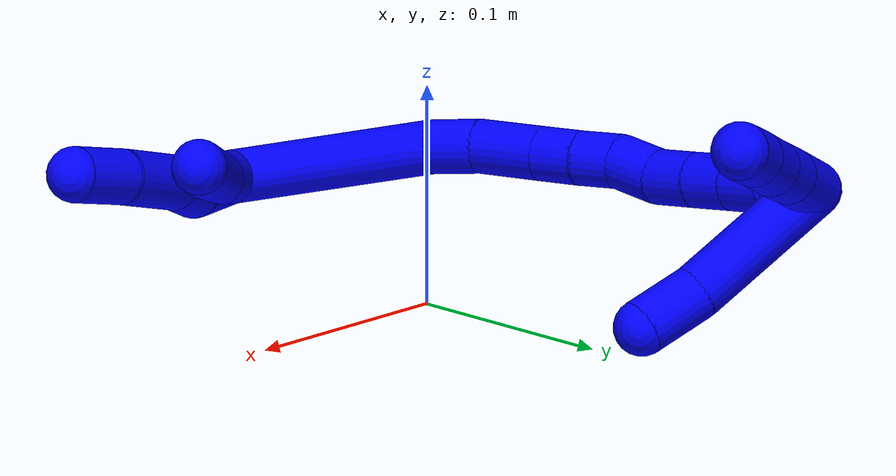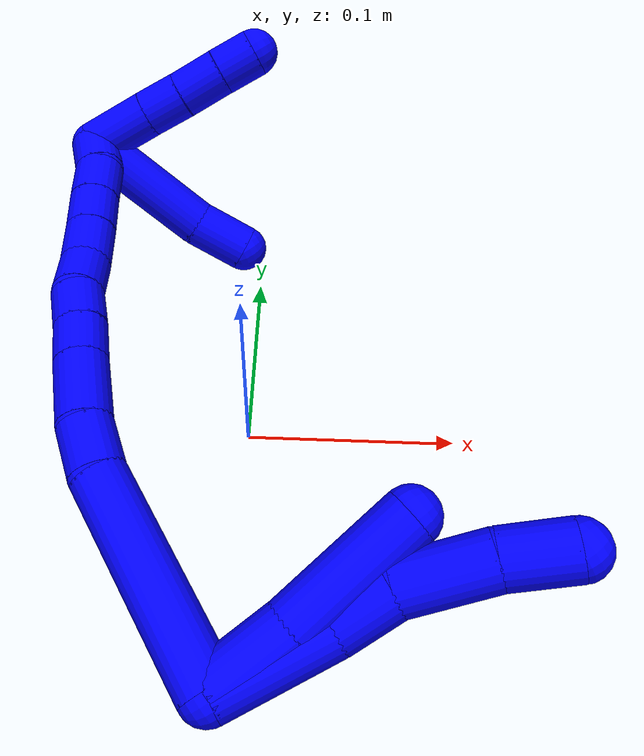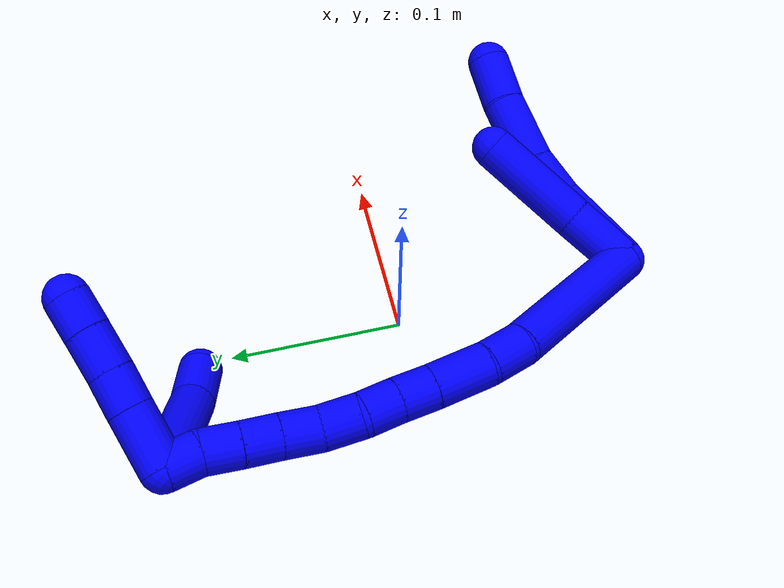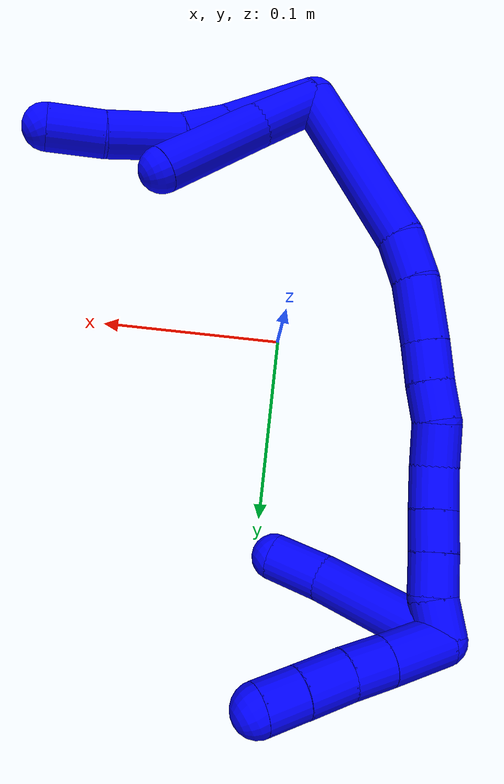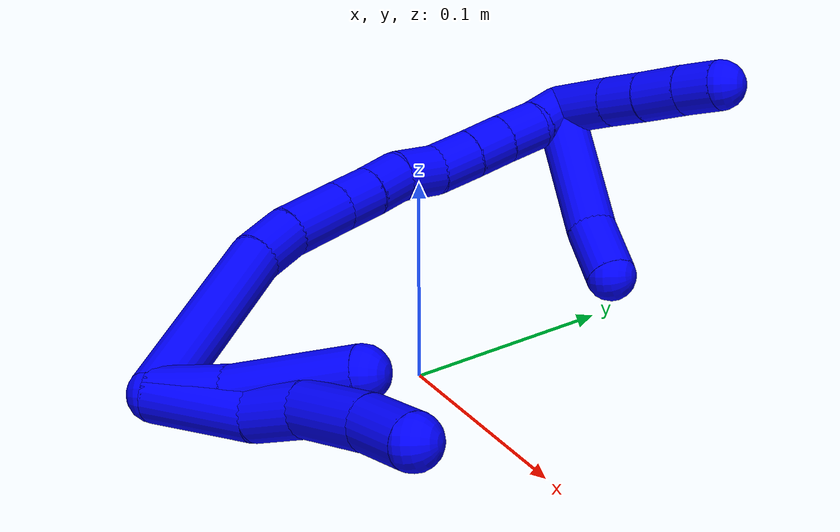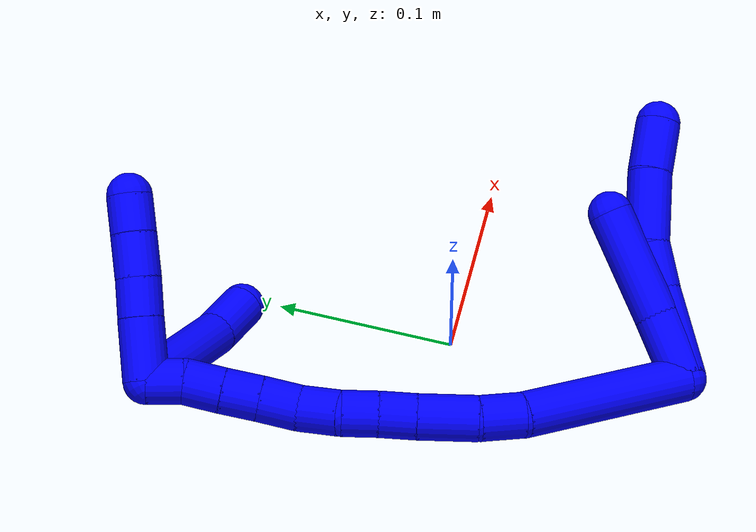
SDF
<sdf version="1.7">
 <world name="default">
  <model name="1">
   <static>0</static>
   <link name="1">
    <collision name="collision-cylinder-e_1_2_8">
     <pose>-0.002496 -0.003283 -0.0257 3.01455 -0.096046 -1.29409</pose>
     <geometry><cylinder><radius>0.0125</radius><length>0.052058</length></cylinder></geometry>
     <surface>
      <friction><ode><mu>1.16</mu><mu2>1.16</mu2><slip1>0</slip1><slip2>0</slip2></ode></friction>
      <contact><ode><kp>1e+06</kp><kd>1</kd><max_vel>0</max_vel><min_depth>0.001</min_depth></ode></contact>
     </surface>
    </collision>
    <visual name="visual-cylinder-e_1_2_8">
     <pose>-0.002496 -0.003283 -0.0257 3.01455 -0.096046 -1.29409</pose>
     <geometry><cylinder><radius>0.0125</radius><length>0.052058</length></cylinder></geometry>
     <material><ambient>0 0 1 1</ambient></material>
    </visual>
    <collision name="collision-cylinder-e_2_8_9">
     <pose>-0.002702 -0.008476 -0.064848 3.00044 0.167065 1.73922</pose>
     <geometry><cylinder><radius>0.0125</radius><length>0.027549</length></cylinder></geometry>
     <surface>
      <friction><ode><mu>1.16</mu><mu2>1.16</mu2><slip1>0</slip1><slip2>0</slip2></ode></friction>
      <contact><ode><kp>1e+06</kp><kd>1</kd><max_vel>0</max_vel><min_depth>0.001</min_depth></ode></contact>
     </surface>
    </collision>
    <visual name="visual-cylinder-e_2_8_9">
     <pose>-0.002702 -0.008476 -0.064848 3.00044 0.167065 1.73922</pose>
     <geometry><cylinder><radius>0.0125</radius><length>0.027549</length></cylinder></geometry>
     <material><ambient>0 0 1 1</ambient></material>
    </visual>
    <collision name="collision-cylinder-e_3_9_10">
     <pose>0.000653 -0.018577 -0.096829 2.7255 0.052465 0.24732</pose>
     <geometry><cylinder><radius>0.0125</radius><length>0.040582</length></cylinder></geometry>
     <surface>
      <friction><ode><mu>1.16</mu><mu2>1.16</mu2><slip1>0</slip1><slip2>0</slip2></ode></friction>
      <contact><ode><kp>1e+06</kp><kd>1</kd><max_vel>0</max_vel><min_depth>0.001</min_depth></ode></contact>
     </surface>
    </collision>
    <visual name="visual-cylinder-e_3_9_10">
     <pose>0.000653 -0.018577 -0.096829 2.7255 0.052465 0.24732</pose>
     <geometry><cylinder><radius>0.0125</radius><length>0.040582</length></cylinder></geometry>
     <material><ambient>0 0 1 1</ambient></material>
    </visual>
    <collision name="collision-cylinder-e_4_10_6">
     <pose>0.001737 -0.034445 -0.12814 2.6005 0.00135 0.004867</pose>
     <geometry><cylinder><radius>0.0125</radius><length>0.029812</length></cylinder></geometry>
     <surface>
      <friction><ode><mu>1.16</mu><mu2>1.16</mu2><slip1>0</slip1><slip2>0</slip2></ode></friction>
      <contact><ode><kp>1e+06</kp><kd>1</kd><max_vel>0</max_vel><min_depth>0.001</min_depth></ode></contact>
     </surface>
    </collision>
    <visual name="visual-cylinder-e_4_10_6">
     <pose>0.001737 -0.034445 -0.12814 2.6005 0.00135 0.004867</pose>
     <geometry><cylinder><radius>0.0125</radius><length>0.029812</length></cylinder></geometry>
     <material><ambient>0 0 1 1</ambient></material>
    </visual>
    <collision name="collision-cylinder-e_1_2_11">
     <pose>0.000445 0.000313 -0.018773 -3.1249 0.023691 -1.91379</pose>
     <geometry><cylinder><radius>0.0125</radius><length>0.037562</length></cylinder></geometry>
     <surface>
      <friction><ode><mu>1.16</mu><mu2>1.16</mu2><slip1>0</slip1><slip2>0</slip2></ode></friction>
      <contact><ode><kp>1e+06</kp><kd>1</kd><max_vel>0</max_vel><min_depth>0.001</min_depth></ode></contact>
     </surface>
    </collision>
    <visual name="visual-cylinder-e_1_2_11">
     <pose>0.000445 0.000313 -0.018773 -3.1249 0.023691 -1.91379</pose>
     <geometry><cylinder><radius>0.0125</radius><length>0.037562</length></cylinder></geometry>
     <material><ambient>0 0 1 1</ambient></material>
    </visual>
    <collision name="collision-cylinder-e_2_11_5">
     <pose>0.005136 0.002327 -0.068428 -3.08659 0.136452 -2.37612</pose>
     <geometry><cylinder><radius>0.0125</radius><length>0.062438</length></cylinder></geometry>
     <surface>
      <friction><ode><mu>1.16</mu><mu2>1.16</mu2><slip1>0</slip1><slip2>0</slip2></ode></friction>
      <contact><ode><kp>1e+06</kp><kd>1</kd><max_vel>0</max_vel><min_depth>0.001</min_depth></ode></contact>
     </surface>
    </collision>
    <visual name="visual-cylinder-e_2_11_5">
     <pose>0.005136 0.002327 -0.068428 -3.08659 0.136452 -2.37612</pose>
     <geometry><cylinder><radius>0.0125</radius><length>0.062438</length></cylinder></geometry>
     <material><ambient>0 0 1 1</ambient></material>
    </visual>
    <collision name="collision-cylinder-e_1_2_12">
     <pose>0.01322 0.046098 -0.003635 -1.64949 0.278459 -0.300953</pose>
     <geometry><cylinder><radius>0.0125</radius><length>0.096188</length></cylinder></geometry>
     <surface>
      <friction><ode><mu>1.16</mu><mu2>1.16</mu2><slip1>0</slip1><slip2>0</slip2></ode></friction>
      <contact><ode><kp>1e+06</kp><kd>1</kd><max_vel>0</max_vel><min_depth>0.001</min_depth></ode></contact>
     </surface>
    </collision>
    <visual name="visual-cylinder-e_1_2_12">
     <pose>0.01322 0.046098 -0.003635 -1.64949 0.278459 -0.300953</pose>
     <geometry><cylinder><radius>0.0125</radius><length>0.096188</length></cylinder></geometry>
     <material><ambient>0 0 1 1</ambient></material>
    </visual>
    <collision name="collision-cylinder-e_2_12_13">
     <pose>0.028265 0.103783 -0.010244 -1.82198 0.151411 -0.194925</pose>
     <geometry><cylinder><radius>0.0125</radius><length>0.024202</length></cylinder></geometry>
     <surface>
      <friction><ode><mu>1.16</mu><mu2>1.16</mu2><slip1>0</slip1><slip2>0</slip2></ode></friction>
      <contact><ode><kp>1e+06</kp><kd>1</kd><max_vel>0</max_vel><min_depth>0.001</min_depth></ode></contact>
     </surface>
    </collision>
    <visual name="visual-cylinder-e_2_12_13">
     <pose>0.028265 0.103783 -0.010244 -1.82198 0.151411 -0.194925</pose>
     <geometry><cylinder><radius>0.0125</radius><length>0.024202</length></cylinder></geometry>
     <material><ambient>0 0 1 1</ambient></material>
    </visual>
    <collision name="collision-cylinder-e_3_13_14">
     <pose>0.030612 0.13062 -0.019393 -1.95558 0.031751 -0.047109</pose>
     <geometry><cylinder><radius>0.0125</radius><length>0.032923</length></cylinder></geometry>
     <surface>
      <friction><ode><mu>1.16</mu><mu2>1.16</mu2><slip1>0</slip1><slip2>0</slip2></ode></friction>
      <contact><ode><kp>1e+06</kp><kd>1</kd><max_vel>0</max_vel><min_depth>0.001</min_depth></ode></contact>
     </surface>
    </collision>
    <visual name="visual-cylinder-e_3_13_14">
     <pose>0.030612 0.13062 -0.019393 -1.95558 0.031751 -0.047109</pose>
     <geometry><cylinder><radius>0.0125</radius><length>0.032923</length></cylinder></geometry>
     <material><ambient>0 0 1 1</ambient></material>
    </visual>
    <collision name="collision-cylinder-e_4_14_15">
     <pose>0.031522 0.155193 -0.02977 -1.99418 0.037774 -0.058445</pose>
     <geometry><cylinder><radius>0.0125</radius><length>0.020466</length></cylinder></geometry>
     <surface>
      <friction><ode><mu>1.16</mu><mu2>1.16</mu2><slip1>0</slip1><slip2>0</slip2></ode></friction>
      <contact><ode><kp>1e+06</kp><kd>1</kd><max_vel>0</max_vel><min_depth>0.001</min_depth></ode></contact>
     </surface>
    </collision>
    <visual name="visual-cylinder-e_4_14_15">
     <pose>0.031522 0.155193 -0.02977 -1.99418 0.037774 -0.058445</pose>
     <geometry><cylinder><radius>0.0125</radius><length>0.020466</length></cylinder></geometry>
     <material><ambient>0 0 1 1</ambient></material>
    </visual>
    <collision name="collision-cylinder-e_5_15_16">
     <pose>0.032545 0.173824 -0.037627 -1.94505 0.063569 -0.093229</pose>
     <geometry><cylinder><radius>0.0125</radius><length>0.020042</length></cylinder></geometry>
     <surface>
      <friction><ode><mu>1.16</mu><mu2>1.16</mu2><slip1>0</slip1><slip2>0</slip2></ode></friction>
      <contact><ode><kp>1e+06</kp><kd>1</kd><max_vel>0</max_vel><min_depth>0.001</min_depth></ode></contact>
     </surface>
    </collision>
    <visual name="visual-cylinder-e_5_15_16">
     <pose>0.032545 0.173824 -0.037627 -1.94505 0.063569 -0.093229</pose>
     <geometry><cylinder><radius>0.0125</radius><length>0.020042</length></cylinder></geometry>
     <material><ambient>0 0 1 1</ambient></material>
    </visual>
    <collision name="collision-cylinder-e_6_16_17">
     <pose>0.031242 0.192711 -0.046786 -2.09225 -0.173802 0.298805</pose>
     <geometry><cylinder><radius>0.0125</radius><length>0.022431</length></cylinder></geometry>
     <surface>
      <friction><ode><mu>1.16</mu><mu2>1.16</mu2><slip1>0</slip1><slip2>0</slip2></ode></friction>
      <contact><ode><kp>1e+06</kp><kd>1</kd><max_vel>0</max_vel><min_depth>0.001</min_depth></ode></contact>
     </surface>
    </collision>
    <visual name="visual-cylinder-e_6_16_17">
     <pose>0.031242 0.192711 -0.046786 -2.09225 -0.173802 0.298805</pose>
     <geometry><cylinder><radius>0.0125</radius><length>0.022431</length></cylinder></geometry>
     <material><ambient>0 0 1 1</ambient></material>
    </visual>
    <collision name="collision-cylinder-e_7_17_18">
     <pose>0.030065 0.211417 -0.058378 -2.15913 0.069446 -0.129684</pose>
     <geometry><cylinder><radius>0.0125</radius><length>0.021997</length></cylinder></geometry>
     <surface>
      <friction><ode><mu>1.16</mu><mu2>1.16</mu2><slip1>0</slip1><slip2>0</slip2></ode></friction>
      <contact><ode><kp>1e+06</kp><kd>1</kd><max_vel>0</max_vel><min_depth>0.001</min_depth></ode></contact>
     </surface>
    </collision>
    <visual name="visual-cylinder-e_7_17_18">
     <pose>0.030065 0.211417 -0.058378 -2.15913 0.069446 -0.129684</pose>
     <geometry><cylinder><radius>0.0125</radius><length>0.021997</length></cylinder></geometry>
     <material><ambient>0 0 1 1</ambient></material>
    </visual>
    <collision name="collision-cylinder-e_8_18_19">
     <pose>0.031607 0.229198 -0.069911 -2.13227 0.076008 -0.137453</pose>
     <geometry><cylinder><radius>0.0125</radius><length>0.020506</length></cylinder></geometry>
     <surface>
      <friction><ode><mu>1.16</mu><mu2>1.16</mu2><slip1>0</slip1><slip2>0</slip2></ode></friction>
      <contact><ode><kp>1e+06</kp><kd>1</kd><max_vel>0</max_vel><min_depth>0.001</min_depth></ode></contact>
     </surface>
    </collision>
    <visual name="visual-cylinder-e_8_18_19">
     <pose>0.031607 0.229198 -0.069911 -2.13227 0.076008 -0.137453</pose>
     <geometry><cylinder><radius>0.0125</radius><length>0.020506</length></cylinder></geometry>
     <material><ambient>0 0 1 1</ambient></material>
    </visual>
    <collision name="collision-cylinder-e_9_19_20">
     <pose>0.033085 0.246583 -0.081235 -2.16354 0.066352 -0.124574</pose>
     <geometry><cylinder><radius>0.0125</radius><length>0.0211</length></cylinder></geometry>
     <surface>
      <friction><ode><mu>1.16</mu><mu2>1.16</mu2><slip1>0</slip1><slip2>0</slip2></ode></friction>
      <contact><ode><kp>1e+06</kp><kd>1</kd><max_vel>0</max_vel><min_depth>0.001</min_depth></ode></contact>
     </surface>
    </collision>
    <visual name="visual-cylinder-e_9_19_20">
     <pose>0.033085 0.246583 -0.081235 -2.16354 0.066352 -0.124574</pose>
     <geometry><cylinder><radius>0.0125</radius><length>0.0211</length></cylinder></geometry>
     <material><ambient>0 0 1 1</ambient></material>
    </visual>
    <collision name="collision-cylinder-e_10_20_1">
     <pose>0.034538 0.264775 -0.090491 -1.91346 0.074824 -0.106085</pose>
     <geometry><cylinder><radius>0.0125</radius><length>0.020145</length></cylinder></geometry>
     <surface>
      <friction><ode><mu>1.16</mu><mu2>1.16</mu2><slip1>0</slip1><slip2>0</slip2></ode></friction>
      <contact><ode><kp>1e+06</kp><kd>1</kd><max_vel>0</max_vel><min_depth>0.001</min_depth></ode></contact>
     </surface>
    </collision>
    <visual name="visual-cylinder-e_10_20_1">
     <pose>0.034538 0.264775 -0.090491 -1.91346 0.074824 -0.106085</pose>
     <geometry><cylinder><radius>0.0125</radius><length>0.020145</length></cylinder></geometry>
     <material><ambient>0 0 1 1</ambient></material>
    </visual>
    <collision name="collision-cylinder-e_1_1_21">
     <pose>0.010533 0.25277 -0.106382 2.09872 -0.783579 -1.24697</pose>
     <geometry><cylinder><radius>0.0125</radius><length>0.070153</length></cylinder></geometry>
     <surface>
      <friction><ode><mu>1.16</mu><mu2>1.16</mu2><slip1>0</slip1><slip2>0</slip2></ode></friction>
      <contact><ode><kp>1e+06</kp><kd>1</kd><max_vel>0</max_vel><min_depth>0.001</min_depth></ode></contact>
     </surface>
    </collision>
    <visual name="visual-cylinder-e_1_1_21">
     <pose>0.010533 0.25277 -0.106382 2.09872 -0.783579 -1.24697</pose>
     <geometry><cylinder><radius>0.0125</radius><length>0.070153</length></cylinder></geometry>
     <material><ambient>0 0 1 1</ambient></material>
    </visual>
    <collision name="collision-cylinder-e_2_21_4">
     <pose>-0.02275 0.221395 -0.126098 2.19899 -0.608058 -1.10375</pose>
     <geometry><cylinder><radius>0.0125</radius><length>0.029847</length></cylinder></geometry>
     <surface>
      <friction><ode><mu>1.16</mu><mu2>1.16</mu2><slip1>0</slip1><slip2>0</slip2></ode></friction>
      <contact><ode><kp>1e+06</kp><kd>1</kd><max_vel>0</max_vel><min_depth>0.001</min_depth></ode></contact>
     </surface>
    </collision>
    <visual name="visual-cylinder-e_2_21_4">
     <pose>-0.02275 0.221395 -0.126098 2.19899 -0.608058 -1.10375</pose>
     <geometry><cylinder><radius>0.0125</radius><length>0.029847</length></cylinder></geometry>
     <material><ambient>0 0 1 1</ambient></material>
    </visual>
    <collision name="collision-cylinder-e_1_1_22">
     <pose>0.038395 0.269789 -0.109925 2.87152 0.18418 1.19399</pose>
     <geometry><cylinder><radius>0.0125</radius><length>0.033901</length></cylinder></geometry>
     <surface>
      <friction><ode><mu>1.16</mu><mu2>1.16</mu2><slip1>0</slip1><slip2>0</slip2></ode></friction>
      <contact><ode><kp>1e+06</kp><kd>1</kd><max_vel>0</max_vel><min_depth>0.001</min_depth></ode></contact>
     </surface>
    </collision>
    <visual name="visual-cylinder-e_1_1_22">
     <pose>0.038395 0.269789 -0.109925 2.87152 0.18418 1.19399</pose>
     <geometry><cylinder><radius>0.0125</radius><length>0.033901</length></cylinder></geometry>
     <material><ambient>0 0 1 1</ambient></material>
    </visual>
    <collision name="collision-cylinder-e_2_22_23">
     <pose>0.043288 0.262369 -0.136051 2.85431 0.168794 1.05849</pose>
     <geometry><cylinder><radius>0.0125</radius><length>0.021296</length></cylinder></geometry>
     <surface>
      <friction><ode><mu>1.16</mu><mu2>1.16</mu2><slip1>0</slip1><slip2>0</slip2></ode></friction>
      <contact><ode><kp>1e+06</kp><kd>1</kd><max_vel>0</max_vel><min_depth>0.001</min_depth></ode></contact>
     </surface>
    </collision>
    <visual name="visual-cylinder-e_2_22_23">
     <pose>0.043288 0.262369 -0.136051 2.85431 0.168794 1.05849</pose>
     <geometry><cylinder><radius>0.0125</radius><length>0.021296</length></cylinder></geometry>
     <material><ambient>0 0 1 1</ambient></material>
    </visual>
    <collision name="collision-cylinder-e_3_23_24">
     <pose>0.047227 0.256512 -0.157635 2.89632 0.179202 1.25974</pose>
     <geometry><cylinder><radius>0.0125</radius><length>0.024131</length></cylinder></geometry>
     <surface>
      <friction><ode><mu>1.16</mu><mu2>1.16</mu2><slip1>0</slip1><slip2>0</slip2></ode></friction>
      <contact><ode><kp>1e+06</kp><kd>1</kd><max_vel>0</max_vel><min_depth>0.001</min_depth></ode></contact>
     </surface>
    </collision>
    <visual name="visual-cylinder-e_3_23_24">
     <pose>0.047227 0.256512 -0.157635 2.89632 0.179202 1.25974</pose>
     <geometry><cylinder><radius>0.0125</radius><length>0.024131</length></cylinder></geometry>
     <material><ambient>0 0 1 1</ambient></material>
    </visual>
    <collision name="collision-cylinder-e_4_24_3">
     <pose>0.050918 0.25121 -0.179082 2.90261 0.149545 1.11566</pose>
     <geometry><cylinder><radius>0.0125</radius><length>0.020672</length></cylinder></geometry>
     <surface>
      <friction><ode><mu>1.16</mu><mu2>1.16</mu2><slip1>0</slip1><slip2>0</slip2></ode></friction>
      <contact><ode><kp>1e+06</kp><kd>1</kd><max_vel>0</max_vel><min_depth>0.001</min_depth></ode></contact>
     </surface>
    </collision>
    <visual name="visual-cylinder-e_4_24_3">
     <pose>0.050918 0.25121 -0.179082 2.90261 0.149545 1.11566</pose>
     <geometry><cylinder><radius>0.0125</radius><length>0.020672</length></cylinder></geometry>
     <material><ambient>0 0 1 1</ambient></material>
    </visual>
    <collision name="collision-sphere-3">
     <pose>0.052458 0.248791 -0.189012 0 -0 0</pose>
     <geometry><sphere><radius>0.0125</radius></sphere></geometry>
     <surface>
      <friction><ode><mu>1.16</mu><mu2>1.16</mu2><slip1>0</slip1><slip2>0</slip2></ode></friction>
      <contact><ode><kp>1e+06</kp><kd>1</kd><max_vel>0</max_vel><min_depth>0.001</min_depth></ode></contact>
     </surface>
    </collision>
    <visual name="visual-sphere-3">
     <pose>0.052458 0.248791 -0.189012 0 -0 0</pose>
     <geometry><sphere><radius>0.0125</radius></sphere></geometry>
     <material><ambient>0 0 1 1</ambient></material>
    </visual>
    <collision name="collision-sphere-24">
     <pose>0.049378 0.25363 -0.169152 0 -0 0</pose>
     <geometry><sphere><radius>0.0125</radius></sphere></geometry>
     <surface>
      <friction><ode><mu>1.16</mu><mu2>1.16</mu2><slip1>0</slip1><slip2>0</slip2></ode></friction>
      <contact><ode><kp>1e+06</kp><kd>1</kd><max_vel>0</max_vel><min_depth>0.001</min_depth></ode></contact>
     </surface>
    </collision>
    <visual name="visual-sphere-24">
     <pose>0.049378 0.25363 -0.169152 0 -0 0</pose>
     <geometry><sphere><radius>0.0125</radius></sphere></geometry>
     <material><ambient>0 0 1 1</ambient></material>
    </visual>
    <collision name="collision-sphere-23">
     <pose>0.045077 0.259395 -0.146118 0 -0 0</pose>
     <geometry><sphere><radius>0.0125</radius></sphere></geometry>
     <surface>
      <friction><ode><mu>1.16</mu><mu2>1.16</mu2><slip1>0</slip1><slip2>0</slip2></ode></friction>
      <contact><ode><kp>1e+06</kp><kd>1</kd><max_vel>0</max_vel><min_depth>0.001</min_depth></ode></contact>
     </surface>
    </collision>
    <visual name="visual-sphere-23">
     <pose>0.045077 0.259395 -0.146118 0 -0 0</pose>
     <geometry><sphere><radius>0.0125</radius></sphere></geometry>
     <material><ambient>0 0 1 1</ambient></material>
    </visual>
    <collision name="collision-sphere-22">
     <pose>0.041499 0.265343 -0.125985 0 -0 0</pose>
     <geometry><sphere><radius>0.0125</radius></sphere></geometry>
     <surface>
      <friction><ode><mu>1.16</mu><mu2>1.16</mu2><slip1>0</slip1><slip2>0</slip2></ode></friction>
      <contact><ode><kp>1e+06</kp><kd>1</kd><max_vel>0</max_vel><min_depth>0.001</min_depth></ode></contact>
     </surface>
    </collision>
    <visual name="visual-sphere-22">
     <pose>0.041499 0.265343 -0.125985 0 -0 0</pose>
     <geometry><sphere><radius>0.0125</radius></sphere></geometry>
     <material><ambient>0 0 1 1</ambient></material>
    </visual>
    <collision name="collision-sphere-4">
     <pose>-0.031276 0.211485 -0.133296 0 -0 0</pose>
     <geometry><sphere><radius>0.0125</radius></sphere></geometry>
     <surface>
      <friction><ode><mu>1.16</mu><mu2>1.16</mu2><slip1>0</slip1><slip2>0</slip2></ode></friction>
      <contact><ode><kp>1e+06</kp><kd>1</kd><max_vel>0</max_vel><min_depth>0.001</min_depth></ode></contact>
     </surface>
    </collision>
    <visual name="visual-sphere-4">
     <pose>-0.031276 0.211485 -0.133296 0 -0 0</pose>
     <geometry><sphere><radius>0.0125</radius></sphere></geometry>
     <material><ambient>0 0 1 1</ambient></material>
    </visual>
    <collision name="collision-sphere-21">
     <pose>-0.014225 0.231305 -0.118899 0 -0 0</pose>
     <geometry><sphere><radius>0.0125</radius></sphere></geometry>
     <surface>
      <friction><ode><mu>1.16</mu><mu2>1.16</mu2><slip1>0</slip1><slip2>0</slip2></ode></friction>
      <contact><ode><kp>1e+06</kp><kd>1</kd><max_vel>0</max_vel><min_depth>0.001</min_depth></ode></contact>
     </surface>
    </collision>
    <visual name="visual-sphere-21">
     <pose>-0.014225 0.231305 -0.118899 0 -0 0</pose>
     <geometry><sphere><radius>0.0125</radius></sphere></geometry>
     <material><ambient>0 0 1 1</ambient></material>
    </visual>
    <collision name="collision-sphere-1">
     <pose>0.035291 0.274235 -0.093865 0 -0 0</pose>
     <geometry><sphere><radius>0.0125</radius></sphere></geometry>
     <surface>
      <friction><ode><mu>1.16</mu><mu2>1.16</mu2><slip1>0</slip1><slip2>0</slip2></ode></friction>
      <contact><ode><kp>1e+06</kp><kd>1</kd><max_vel>0</max_vel><min_depth>0.001</min_depth></ode></contact>
     </surface>
    </collision>
    <visual name="visual-sphere-1">
     <pose>0.035291 0.274235 -0.093865 0 -0 0</pose>
     <geometry><sphere><radius>0.0125</radius></sphere></geometry>
     <material><ambient>0 0 1 1</ambient></material>
    </visual>
    <collision name="collision-sphere-11">
     <pose>0.00089 0.000627 -0.037546 0 -0 0</pose>
     <geometry><sphere><radius>0.0125</radius></sphere></geometry>
     <surface>
      <friction><ode><mu>1.16</mu><mu2>1.16</mu2><slip1>0</slip1><slip2>0</slip2></ode></friction>
      <contact><ode><kp>1e+06</kp><kd>1</kd><max_vel>0</max_vel><min_depth>0.001</min_depth></ode></contact>
     </surface>
    </collision>
    <visual name="visual-sphere-11">
     <pose>0.00089 0.000627 -0.037546 0 -0 0</pose>
     <geometry><sphere><radius>0.0125</radius></sphere></geometry>
     <material><ambient>0 0 1 1</ambient></material>
    </visual>
    <collision name="collision-sphere-6">
     <pose>0.001757 -0.042123 -0.140916 0 -0 0</pose>
     <geometry><sphere><radius>0.0125</radius></sphere></geometry>
     <surface>
      <friction><ode><mu>1.16</mu><mu2>1.16</mu2><slip1>0</slip1><slip2>0</slip2></ode></friction>
      <contact><ode><kp>1e+06</kp><kd>1</kd><max_vel>0</max_vel><min_depth>0.001</min_depth></ode></contact>
     </surface>
    </collision>
    <visual name="visual-sphere-6">
     <pose>0.001757 -0.042123 -0.140916 0 -0 0</pose>
     <geometry><sphere><radius>0.0125</radius></sphere></geometry>
     <material><ambient>0 0 1 1</ambient></material>
    </visual>
    <collision name="collision-sphere-10">
     <pose>0.001717 -0.026767 -0.115363 0 -0 0</pose>
     <geometry><sphere><radius>0.0125</radius></sphere></geometry>
     <surface>
      <friction><ode><mu>1.16</mu><mu2>1.16</mu2><slip1>0</slip1><slip2>0</slip2></ode></friction>
      <contact><ode><kp>1e+06</kp><kd>1</kd><max_vel>0</max_vel><min_depth>0.001</min_depth></ode></contact>
     </surface>
    </collision>
    <visual name="visual-sphere-10">
     <pose>0.001717 -0.026767 -0.115363 0 -0 0</pose>
     <geometry><sphere><radius>0.0125</radius></sphere></geometry>
     <material><ambient>0 0 1 1</ambient></material>
    </visual>
    <collision name="collision-sphere-9">
     <pose>-0.000411 -0.010387 -0.078295 0 -0 0</pose>
     <geometry><sphere><radius>0.0125</radius></sphere></geometry>
     <surface>
      <friction><ode><mu>1.16</mu><mu2>1.16</mu2><slip1>0</slip1><slip2>0</slip2></ode></friction>
      <contact><ode><kp>1e+06</kp><kd>1</kd><max_vel>0</max_vel><min_depth>0.001</min_depth></ode></contact>
     </surface>
    </collision>
    <visual name="visual-sphere-9">
     <pose>-0.000411 -0.010387 -0.078295 0 -0 0</pose>
     <geometry><sphere><radius>0.0125</radius></sphere></geometry>
     <material><ambient>0 0 1 1</ambient></material>
    </visual>
    <collision name="collision-sphere-2">
     <geometry><sphere><radius>0.0125</radius></sphere></geometry>
     <surface>
      <friction><ode><mu>1.16</mu><mu2>1.16</mu2><slip1>0</slip1><slip2>0</slip2></ode></friction>
      <contact><ode><kp>1e+06</kp><kd>1</kd><max_vel>0</max_vel><min_depth>0.001</min_depth></ode></contact>
     </surface>
    </collision>
    <visual name="visual-sphere-2">
     <geometry><sphere><radius>0.0125</radius></sphere></geometry>
     <material><ambient>0 0 1 1</ambient></material>
    </visual>
    <collision name="collision-sphere-19">
     <pose>0.032386 0.237852 -0.075354 0 -0 0</pose>
     <geometry><sphere><radius>0.0125</radius></sphere></geometry>
     <surface>
      <friction><ode><mu>1.16</mu><mu2>1.16</mu2><slip1>0</slip1><slip2>0</slip2></ode></friction>
      <contact><ode><kp>1e+06</kp><kd>1</kd><max_vel>0</max_vel><min_depth>0.001</min_depth></ode></contact>
     </surface>
    </collision>
    <visual name="visual-sphere-19">
     <pose>0.032386 0.237852 -0.075354 0 -0 0</pose>
     <geometry><sphere><radius>0.0125</radius></sphere></geometry>
     <material><ambient>0 0 1 1</ambient></material>
    </visual>
    <collision name="collision-sphere-8">
     <pose>-0.004992 -0.006566 -0.0514 0 -0 0</pose>
     <geometry><sphere><radius>0.0125</radius></sphere></geometry>
     <surface>
      <friction><ode><mu>1.16</mu><mu2>1.16</mu2><slip1>0</slip1><slip2>0</slip2></ode></friction>
      <contact><ode><kp>1e+06</kp><kd>1</kd><max_vel>0</max_vel><min_depth>0.001</min_depth></ode></contact>
     </surface>
    </collision>
    <visual name="visual-sphere-8">
     <pose>-0.004992 -0.006566 -0.0514 0 -0 0</pose>
     <geometry><sphere><radius>0.0125</radius></sphere></geometry>
     <material><ambient>0 0 1 1</ambient></material>
    </visual>
    <collision name="collision-sphere-5">
     <pose>0.009383 0.004028 -0.09931 0 -0 0</pose>
     <geometry><sphere><radius>0.0125</radius></sphere></geometry>
     <surface>
      <friction><ode><mu>1.16</mu><mu2>1.16</mu2><slip1>0</slip1><slip2>0</slip2></ode></friction>
      <contact><ode><kp>1e+06</kp><kd>1</kd><max_vel>0</max_vel><min_depth>0.001</min_depth></ode></contact>
     </surface>
    </collision>
    <visual name="visual-sphere-5">
     <pose>0.009383 0.004028 -0.09931 0 -0 0</pose>
     <geometry><sphere><radius>0.0125</radius></sphere></geometry>
     <material><ambient>0 0 1 1</ambient></material>
    </visual>
    <collision name="collision-sphere-12">
     <pose>0.02644 0.092196 -0.007271 0 -0 0</pose>
     <geometry><sphere><radius>0.0125</radius></sphere></geometry>
     <surface>
      <friction><ode><mu>1.16</mu><mu2>1.16</mu2><slip1>0</slip1><slip2>0</slip2></ode></friction>
      <contact><ode><kp>1e+06</kp><kd>1</kd><max_vel>0</max_vel><min_depth>0.001</min_depth></ode></contact>
     </surface>
    </collision>
    <visual name="visual-sphere-12">
     <pose>0.02644 0.092196 -0.007271 0 -0 0</pose>
     <geometry><sphere><radius>0.0125</radius></sphere></geometry>
     <material><ambient>0 0 1 1</ambient></material>
    </visual>
    <collision name="collision-sphere-13">
     <pose>0.03009 0.11537 -0.013217 0 -0 0</pose>
     <geometry><sphere><radius>0.0125</radius></sphere></geometry>
     <surface>
      <friction><ode><mu>1.16</mu><mu2>1.16</mu2><slip1>0</slip1><slip2>0</slip2></ode></friction>
      <contact><ode><kp>1e+06</kp><kd>1</kd><max_vel>0</max_vel><min_depth>0.001</min_depth></ode></contact>
     </surface>
    </collision>
    <visual name="visual-sphere-13">
     <pose>0.03009 0.11537 -0.013217 0 -0 0</pose>
     <geometry><sphere><radius>0.0125</radius></sphere></geometry>
     <material><ambient>0 0 1 1</ambient></material>
    </visual>
    <collision name="collision-sphere-14">
     <pose>0.031135 0.14587 -0.025569 0 -0 0</pose>
     <geometry><sphere><radius>0.0125</radius></sphere></geometry>
     <surface>
      <friction><ode><mu>1.16</mu><mu2>1.16</mu2><slip1>0</slip1><slip2>0</slip2></ode></friction>
      <contact><ode><kp>1e+06</kp><kd>1</kd><max_vel>0</max_vel><min_depth>0.001</min_depth></ode></contact>
     </surface>
    </collision>
    <visual name="visual-sphere-14">
     <pose>0.031135 0.14587 -0.025569 0 -0 0</pose>
     <geometry><sphere><radius>0.0125</radius></sphere></geometry>
     <material><ambient>0 0 1 1</ambient></material>
    </visual>
    <collision name="collision-sphere-15">
     <pose>0.031908 0.164516 -0.033971 0 -0 0</pose>
     <geometry><sphere><radius>0.0125</radius></sphere></geometry>
     <surface>
      <friction><ode><mu>1.16</mu><mu2>1.16</mu2><slip1>0</slip1><slip2>0</slip2></ode></friction>
      <contact><ode><kp>1e+06</kp><kd>1</kd><max_vel>0</max_vel><min_depth>0.001</min_depth></ode></contact>
     </surface>
    </collision>
    <visual name="visual-sphere-15">
     <pose>0.031908 0.164516 -0.033971 0 -0 0</pose>
     <geometry><sphere><radius>0.0125</radius></sphere></geometry>
     <material><ambient>0 0 1 1</ambient></material>
    </visual>
    <collision name="collision-sphere-16">
     <pose>0.033181 0.183133 -0.041283 0 -0 0</pose>
     <geometry><sphere><radius>0.0125</radius></sphere></geometry>
     <surface>
      <friction><ode><mu>1.16</mu><mu2>1.16</mu2><slip1>0</slip1><slip2>0</slip2></ode></friction>
      <contact><ode><kp>1e+06</kp><kd>1</kd><max_vel>0</max_vel><min_depth>0.001</min_depth></ode></contact>
     </surface>
    </collision>
    <visual name="visual-sphere-16">
     <pose>0.033181 0.183133 -0.041283 0 -0 0</pose>
     <geometry><sphere><radius>0.0125</radius></sphere></geometry>
     <material><ambient>0 0 1 1</ambient></material>
    </visual>
    <collision name="collision-sphere-17">
     <pose>0.029302 0.20229 -0.052289 0 -0 0</pose>
     <geometry><sphere><radius>0.0125</radius></sphere></geometry>
     <surface>
      <friction><ode><mu>1.16</mu><mu2>1.16</mu2><slip1>0</slip1><slip2>0</slip2></ode></friction>
      <contact><ode><kp>1e+06</kp><kd>1</kd><max_vel>0</max_vel><min_depth>0.001</min_depth></ode></contact>
     </surface>
    </collision>
    <visual name="visual-sphere-17">
     <pose>0.029302 0.20229 -0.052289 0 -0 0</pose>
     <geometry><sphere><radius>0.0125</radius></sphere></geometry>
     <material><ambient>0 0 1 1</ambient></material>
    </visual>
    <collision name="collision-sphere-18">
     <pose>0.030829 0.220544 -0.064468 0 -0 0</pose>
     <geometry><sphere><radius>0.0125</radius></sphere></geometry>
     <surface>
      <friction><ode><mu>1.16</mu><mu2>1.16</mu2><slip1>0</slip1><slip2>0</slip2></ode></friction>
      <contact><ode><kp>1e+06</kp><kd>1</kd><max_vel>0</max_vel><min_depth>0.001</min_depth></ode></contact>
     </surface>
    </collision>
    <visual name="visual-sphere-18">
     <pose>0.030829 0.220544 -0.064468 0 -0 0</pose>
     <geometry><sphere><radius>0.0125</radius></sphere></geometry>
     <material><ambient>0 0 1 1</ambient></material>
    </visual>
    <collision name="collision-sphere-20">
     <pose>0.033785 0.255314 -0.087116 0 -0 0</pose>
     <geometry><sphere><radius>0.0125</radius></sphere></geometry>
     <surface>
      <friction><ode><mu>1.16</mu><mu2>1.16</mu2><slip1>0</slip1><slip2>0</slip2></ode></friction>
      <contact><ode><kp>1e+06</kp><kd>1</kd><max_vel>0</max_vel><min_depth>0.001</min_depth></ode></contact>
     </surface>
    </collision>
    <visual name="visual-sphere-20">
     <pose>0.033785 0.255314 -0.087116 0 -0 0</pose>
     <geometry><sphere><radius>0.0125</radius></sphere></geometry>
     <material><ambient>0 0 1 1</ambient></material>
    </visual>
    <inertial>
     <pose>0.016469 0.120727 -0.068149 0 -0 0</pose>
     <mass>0.75</mass>
     <inertia><ixx>2.8e-05</ixx><ixy>0</ixy><ixz>0</ixz><iyy>-4.6e-05</iyy><iyz>0</iyz><izz>-0.0001</izz></inertia>
    </inertial>
   </link>
   <pose>-0.005127 -0.132013 0.032965 -2.73665 -1.33992 -2.93916</pose>
  </model>
 </world>
</sdf>
